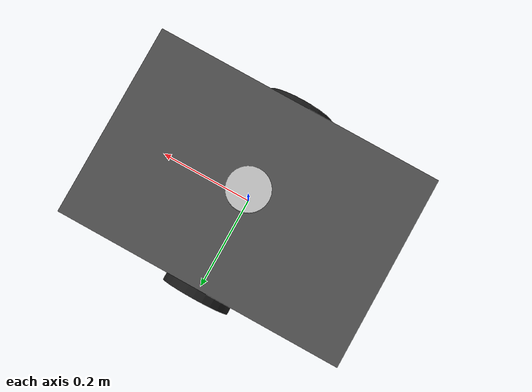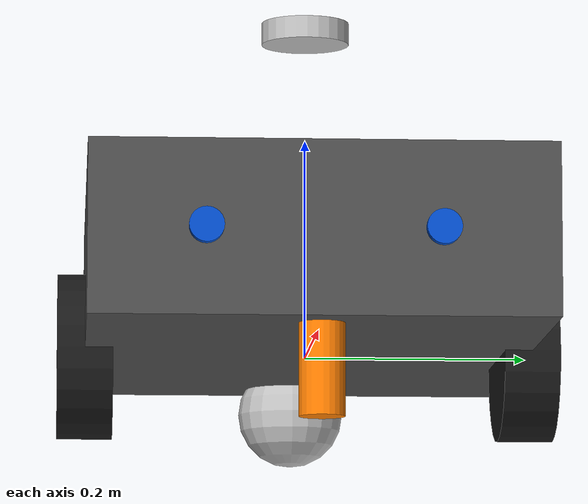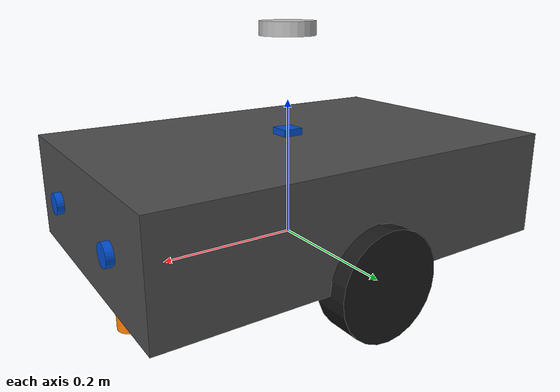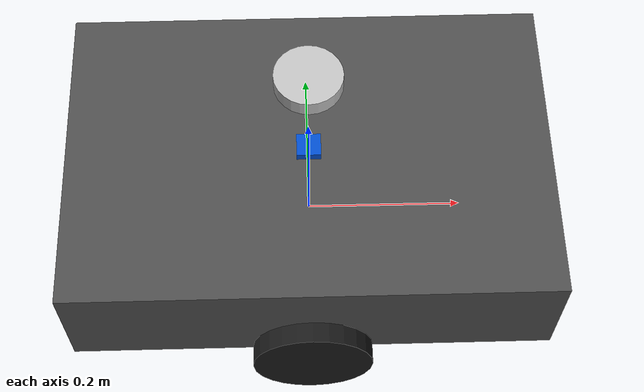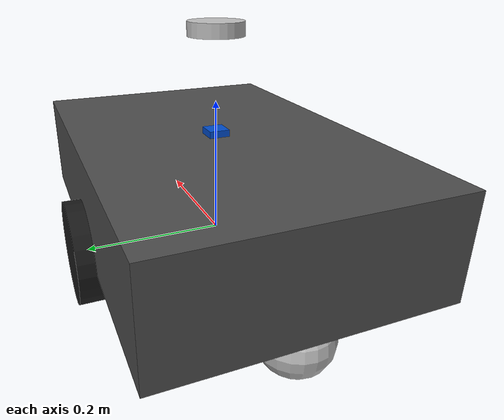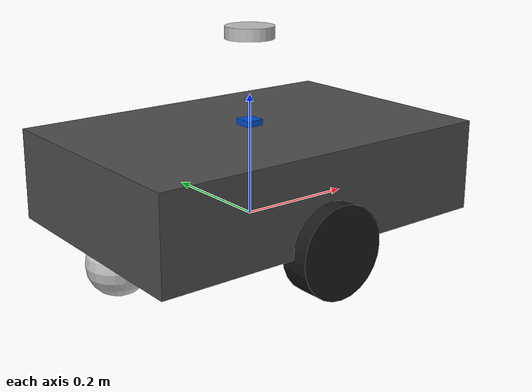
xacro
<?xml version="1.0"?>
<robot xmlns:xacro="http://www.ros.org/wiki/xacro" name="striper">

  <!-- ===================== Properties ===================== -->
  <xacro:property name="chassis_length" value="0.6"/>
  <xacro:property name="chassis_width"  value="0.4"/>
  <xacro:property name="chassis_height" value="0.15"/>
  <xacro:property name="chassis_mass"   value="15.0"/>

  <xacro:property name="wheel_radius" value="0.075"/>
  <xacro:property name="wheel_width"  value="0.05"/>
  <xacro:property name="wheel_mass"   value="1.0"/>
  <xacro:property name="wheel_separation" value="0.40"/>

  <xacro:property name="caster_radius" value="0.05"/>
  <xacro:property name="caster_mass"   value="0.3"/>

  <!-- ===================== Materials ===================== -->
  <material name="dark_grey">
    <color rgba="0.3 0.3 0.3 1.0"/>
  </material>
  <material name="black">
    <color rgba="0.1 0.1 0.1 1.0"/>
  </material>
  <material name="orange">
    <color rgba="1.0 0.5 0.0 1.0"/>
  </material>
  <material name="blue">
    <color rgba="0.0 0.3 0.8 1.0"/>
  </material>
  <material name="silver">
    <color rgba="0.75 0.75 0.75 1.0"/>
  </material>

  <!-- ===================== Inertia Macros ===================== -->
  <xacro:macro name="box_inertia" params="m x y z">
    <inertial>
      <mass value="${m}"/>
      <inertia ixx="${(m/12.0)*(y*y+z*z)}" ixy="0.0" ixz="0.0"
               iyy="${(m/12.0)*(x*x+z*z)}" iyz="0.0"
               izz="${(m/12.0)*(x*x+y*y)}"/>
    </inertial>
  </xacro:macro>

  <xacro:macro name="cylinder_inertia" params="m r h">
    <inertial>
      <mass value="${m}"/>
      <inertia ixx="${(m/12.0)*(3*r*r+h*h)}" ixy="0.0" ixz="0.0"
               iyy="${(m/12.0)*(3*r*r+h*h)}" iyz="0.0"
               izz="${(m/2.0)*(r*r)}"/>
    </inertial>
  </xacro:macro>

  <xacro:macro name="sphere_inertia" params="m r">
    <inertial>
      <mass value="${m}"/>
      <inertia ixx="${(2.0/5.0)*m*r*r}" ixy="0.0" ixz="0.0"
               iyy="${(2.0/5.0)*m*r*r}" iyz="0.0"
               izz="${(2.0/5.0)*m*r*r}"/>
    </inertial>
  </xacro:macro>

  <!-- ===================== Base Link ===================== -->
  <link name="base_link"/>

  <link name="chassis_link">
    <visual>
      <geometry>
        <box size="${chassis_length} ${chassis_width} ${chassis_height}"/>
      </geometry>
      <material name="dark_grey"/>
    </visual>
    <collision>
      <geometry>
        <box size="${chassis_length} ${chassis_width} ${chassis_height}"/>
      </geometry>
    </collision>
    <xacro:box_inertia m="${chassis_mass}" x="${chassis_length}" y="${chassis_width}" z="${chassis_height}"/>
  </link>

  <joint name="base_to_chassis" type="fixed">
    <parent link="base_link"/>
    <child link="chassis_link"/>
    <origin xyz="0 0 ${wheel_radius}" rpy="0 0 0"/>
  </joint>

  <!-- ===================== Wheel Macro ===================== -->
  <xacro:macro name="drive_wheel" params="prefix y_offset">
    <link name="${prefix}_wheel">
      <visual>
        <geometry>
          <cylinder radius="${wheel_radius}" length="${wheel_width}"/>
        </geometry>
        <origin xyz="0 0 0" rpy="${pi/2} 0 0"/>
        <material name="black"/>
      </visual>
      <collision>
        <geometry>
          <cylinder radius="${wheel_radius}" length="${wheel_width}"/>
        </geometry>
        <origin xyz="0 0 0" rpy="${pi/2} 0 0"/>
      </collision>
      <xacro:cylinder_inertia m="${wheel_mass}" r="${wheel_radius}" h="${wheel_width}"/>
    </link>

    <joint name="${prefix}_wheel_joint" type="continuous">
      <parent link="base_link"/>
      <child link="${prefix}_wheel"/>
      <origin xyz="0 ${y_offset} 0" rpy="0 0 0"/>
      <axis xyz="0 1 0"/>
      <dynamics damping="0.1" friction="0.1"/>
    </joint>

    <!-- Gazebo friction -->
    <gazebo reference="${prefix}_wheel">
      <mu1>1.5</mu1>
      <mu2>1.5</mu2>
      <kp>1000000.0</kp>
      <kd>100.0</kd>
      <material>Gazebo/DarkGrey</material>
    </gazebo>
  </xacro:macro>

  <xacro:drive_wheel prefix="left"  y_offset="${wheel_separation/2}"/>
  <xacro:drive_wheel prefix="right" y_offset="${-wheel_separation/2}"/>

  <!-- ===================== Caster Wheel ===================== -->
  <link name="caster_wheel">
    <visual>
      <geometry>
        <sphere radius="${caster_radius}"/>
      </geometry>
      <material name="silver"/>
    </visual>
    <collision>
      <geometry>
        <sphere radius="${caster_radius}"/>
      </geometry>
    </collision>
    <xacro:sphere_inertia m="${caster_mass}" r="${caster_radius}"/>
  </link>

  <joint name="caster_wheel_joint" type="fixed">
    <parent link="base_link"/>
    <child link="caster_wheel"/>
    <origin xyz="${-chassis_length/2 + caster_radius} 0 ${-(wheel_radius - caster_radius)}" rpy="0 0 0"/>
  </joint>

  <gazebo reference="caster_wheel">
    <mu1>0.01</mu1>
    <mu2>0.01</mu2>
    <kp>1000000.0</kp>
    <kd>100.0</kd>
    <material>Gazebo/Grey</material>
  </gazebo>

  <!-- ===================== IMU Link (BNO085) ===================== -->
  <link name="imu_link">
    <visual>
      <geometry>
        <box size="0.03 0.03 0.01"/>
      </geometry>
      <material name="blue"/>
    </visual>
    <collision>
      <geometry>
        <box size="0.03 0.03 0.01"/>
      </geometry>
    </collision>
    <xacro:box_inertia m="0.01" x="0.03" y="0.03" z="0.01"/>
  </link>

  <joint name="imu_joint" type="fixed">
    <parent link="chassis_link"/>
    <child link="imu_link"/>
    <origin xyz="0 0 ${chassis_height/2 + 0.005}" rpy="0 0 0"/>
  </joint>

  <!-- ===================== GPS Link ===================== -->
  <link name="gps_link">
    <visual>
      <geometry>
        <cylinder radius="0.04" length="0.02"/>
      </geometry>
      <material name="silver"/>
    </visual>
    <collision>
      <geometry>
        <cylinder radius="0.04" length="0.02"/>
      </geometry>
    </collision>
    <xacro:cylinder_inertia m="0.05" r="0.04" h="0.02"/>
  </link>

  <joint name="gps_joint" type="fixed">
    <parent link="chassis_link"/>
    <child link="gps_link"/>
    <origin xyz="0 0 ${chassis_height/2 + 0.15}" rpy="0 0 0"/>
  </joint>

  <!-- ===================== Paint Head Link ===================== -->
  <link name="paint_head_link">
    <visual>
      <geometry>
        <cylinder radius="0.02" length="0.08"/>
      </geometry>
      <origin xyz="0 0 -0.04" rpy="0 0 0"/>
      <material name="orange"/>
    </visual>
    <collision>
      <geometry>
        <cylinder radius="0.02" length="0.08"/>
      </geometry>
      <origin xyz="0 0 -0.04" rpy="0 0 0"/>
    </collision>
    <xacro:cylinder_inertia m="0.2" r="0.02" h="0.08"/>
  </link>

  <joint name="paint_head_joint" type="fixed">
    <parent link="chassis_link"/>
    <child link="paint_head_link"/>
    <origin xyz="${chassis_length/2 - 0.05} 0 ${-chassis_height/2}" rpy="0 0 0"/>
  </joint>

  <!-- ===================== Ultrasonic Sensors ===================== -->
  <xacro:macro name="ultrasonic_sensor" params="prefix x_offset y_offset">
    <link name="${prefix}_ultrasonic">
      <visual>
        <geometry>
          <cylinder radius="0.015" length="0.02"/>
        </geometry>
        <origin xyz="0 0 0" rpy="0 ${pi/2} 0"/>
        <material name="blue"/>
      </visual>
      <collision>
        <geometry>
          <cylinder radius="0.015" length="0.02"/>
        </geometry>
        <origin xyz="0 0 0" rpy="0 ${pi/2} 0"/>
      </collision>
      <xacro:cylinder_inertia m="0.02" r="0.015" h="0.02"/>
    </link>

    <joint name="${prefix}_ultrasonic_joint" type="fixed">
      <parent link="chassis_link"/>
      <child link="${prefix}_ultrasonic"/>
      <origin xyz="${x_offset} ${y_offset} 0" rpy="0 0 0"/>
    </joint>
  </xacro:macro>

  <xacro:ultrasonic_sensor prefix="front_left"  x_offset="${chassis_length/2}" y_offset="${chassis_width/4}"/>
  <xacro:ultrasonic_sensor prefix="front_right" x_offset="${chassis_length/2}" y_offset="${-chassis_width/4}"/>

  <!-- ===================== Gazebo Plugins ===================== -->

  <!-- Differential Drive -->
  <gazebo>
    <plugin name="diff_drive_controller" filename="libgazebo_ros_diff_drive.so">
      <ros>
        <namespace>/</namespace>
      </ros>
      <update_rate>50</update_rate>
      <left_joint>left_wheel_joint</left_joint>
      <right_joint>right_wheel_joint</right_joint>
      <wheel_separation>${wheel_separation}</wheel_separation>
      <wheel_diameter>${wheel_radius*2}</wheel_diameter>
      <max_wheel_torque>10.0</max_wheel_torque>
      <max_wheel_acceleration>2.0</max_wheel_acceleration>
      <command_topic>cmd_vel</command_topic>
      <odometry_topic>odom/wheel</odometry_topic>
      <odometry_frame>odom</odometry_frame>
      <robot_base_frame>base_link</robot_base_frame>
      <publish_odom>true</publish_odom>
      <publish_odom_tf>false</publish_odom_tf>
      <publish_wheel_tf>true</publish_wheel_tf>
    </plugin>
  </gazebo>

  <!-- IMU Sensor -->
  <gazebo reference="imu_link">
    <sensor name="imu_sensor" type="imu">
      <always_on>true</always_on>
      <update_rate>100</update_rate>
      <imu>
        <angular_velocity>
          <x><noise type="gaussian"><mean>0.0</mean><stddev>0.0002</stddev></noise></x>
          <y><noise type="gaussian"><mean>0.0</mean><stddev>0.0002</stddev></noise></y>
          <z><noise type="gaussian"><mean>0.0</mean><stddev>0.0002</stddev></noise></z>
        </angular_velocity>
        <linear_acceleration>
          <x><noise type="gaussian"><mean>0.0</mean><stddev>0.017</stddev></noise></x>
          <y><noise type="gaussian"><mean>0.0</mean><stddev>0.017</stddev></noise></y>
          <z><noise type="gaussian"><mean>0.0</mean><stddev>0.017</stddev></noise></z>
        </linear_acceleration>
      </imu>
      <plugin name="imu_plugin" filename="libgazebo_ros_imu_sensor.so">
        <ros>
          <namespace>/</namespace>
          <remapping>~/out:=imu/data</remapping>
        </ros>
        <initial_orientation_as_reference>false</initial_orientation_as_reference>
        <frame_name>imu_link</frame_name>
      </plugin>
    </sensor>
    <material>Gazebo/Blue</material>
  </gazebo>

  <!-- Contact Sensor (paint head) -->
  <gazebo reference="paint_head_link">
    <sensor name="paint_contact_sensor" type="contact">
      <always_on>true</always_on>
      <update_rate>50</update_rate>
      <contact>
        <collision>paint_head_link_collision</collision>
      </contact>
      <plugin name="paint_contact_plugin" filename="libgazebo_ros_bumper.so">
        <ros>
          <namespace>/</namespace>
          <remapping>~/out:=paint_head/contact</remapping>
        </ros>
        <frame_name>paint_head_link</frame_name>
      </plugin>
    </sensor>
    <material>Gazebo/Orange</material>
  </gazebo>

</robot>
